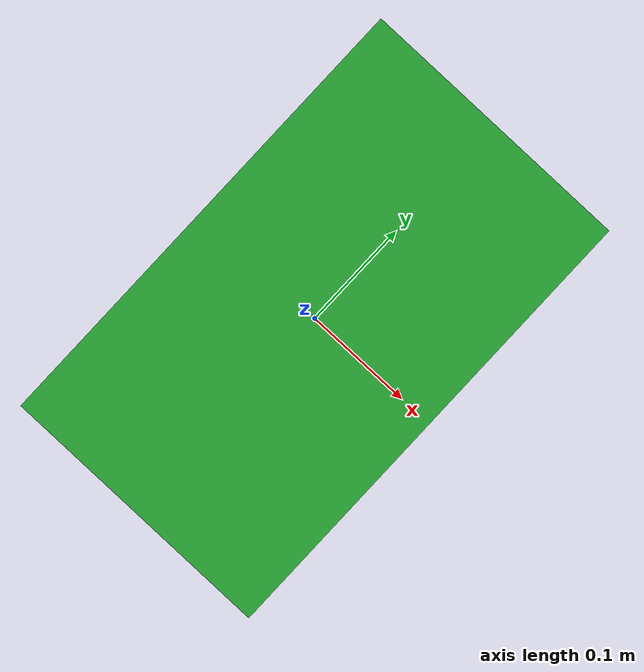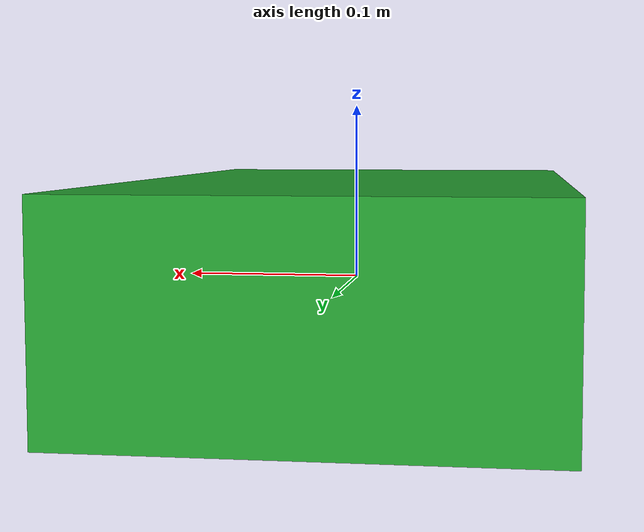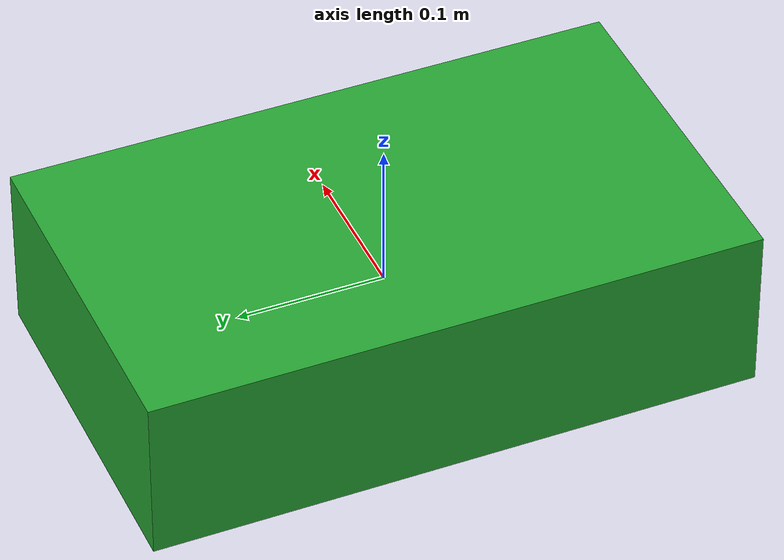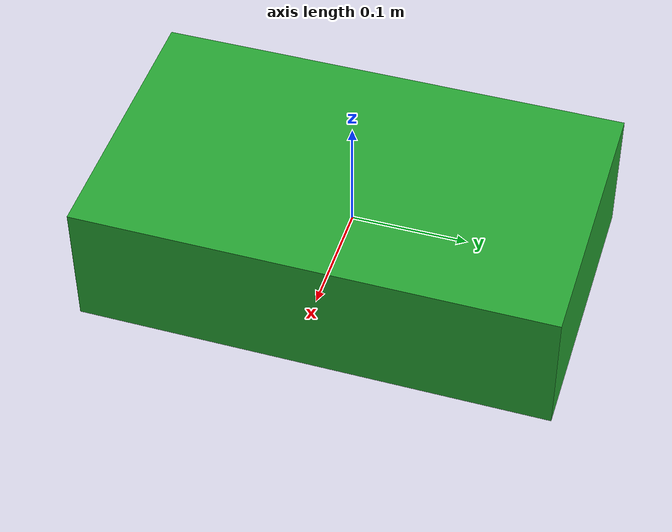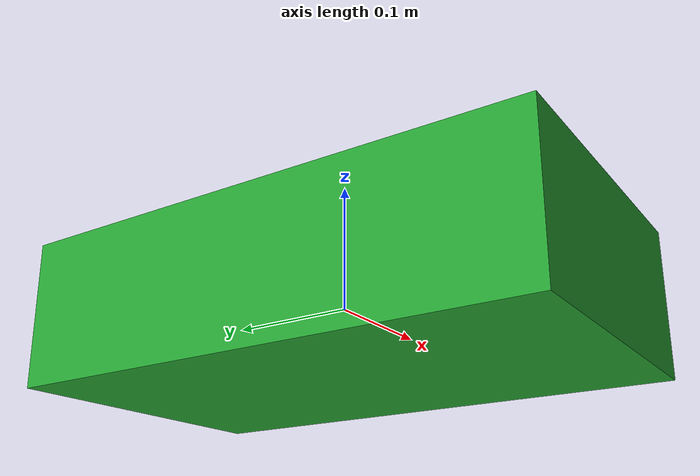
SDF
<?xml version='1.0'?>
<sdf version='1.7'>
  <model name='box_green'>
    <link name='link'>
      <inertial>
        <mass>3.5</mass>
        <inertia>
          <ixx>0.0527224</ixx>
          <ixy>0</ixy>
          <ixz>0</ixz>
          <iyy>0.0208089</iyy>
          <iyz>0</iyz>
          <izz>0.0659078</izz>
        </inertia>
        <pose>0 0 0 0 -0 0</pose>
      </inertial>
      <self_collide>0</self_collide>
      <enable_wind>0</enable_wind>
      <kinematic>0</kinematic>
      <pose>0 0 0 0 -0 0</pose>
      <gravity>1</gravity>
      <visual name='visual'>
        <geometry>
          <box>
            <size>0.241404 0.409504 0.114319</size>
          </box>
        </geometry>
        <material>
          <script>
            <name>Gazebo/Green</name>
            <uri>file://media/materials/scripts/gazebo.material</uri>
          </script>
          <shader type='pixel'>
            <normal_map>__default__</normal_map>
          </shader>
          <ambient>0.3 0.3 0.3 1</ambient>
          <diffuse>0.1 1 0.1 1</diffuse>
          <specular>0.01 0.01 0.01 1</specular>
          <emissive>0 0 0 1</emissive>
        </material>
        <pose>0 0 0 0 -0 0</pose>
        <transparency>0</transparency>
        <cast_shadows>1</cast_shadows>
      </visual>
      <collision name='collision'>
        <laser_retro>0</laser_retro>
        <max_contacts>20</max_contacts>
        <pose>0 0 0 0 -0 0</pose>
        <geometry>
          <box>
            <size>0.241404 0.409504 0.114319</size>
          </box>
        </geometry>
        <surface>
          <friction>
            <ode>
              <mu>0.6</mu>
              <mu2>0.6</mu2>
              <fdir1>0.707 0.707 0</fdir1>
              <slip1>0</slip1>
              <slip2>0</slip2>
            </ode>
            <torsional>
              <coefficient>0.6</coefficient>
              <patch_radius>0.5</patch_radius>
              <surface_radius>0.5</surface_radius>
              <use_patch_radius>0</use_patch_radius>
              <ode>
                <slip>0</slip>
              </ode>
            </torsional>
          </friction>
          <bounce>
            <restitution_coefficient>0.002</restitution_coefficient>
            <threshold>1e+06</threshold>
          </bounce>
          <contact>
            <collide_without_contact>0</collide_without_contact>
            <collide_without_contact_bitmask>1</collide_without_contact_bitmask>
            <collide_bitmask>1</collide_bitmask>
            <ode>
              <soft_cfm>0</soft_cfm>
              <soft_erp>0.2</soft_erp>
              <kp>1e+15</kp>
              <kd>1e+13</kd>
              <max_vel>0.01</max_vel>
              <min_depth>0</min_depth>
            </ode>
            <bullet>
              <split_impulse>1</split_impulse>
              <split_impulse_penetration_threshold>-0.01</split_impulse_penetration_threshold>
              <soft_cfm>0</soft_cfm>
              <soft_erp>0.2</soft_erp>
              <kp>1e+15</kp>
              <kd>1e+13</kd>
            </bullet>
          </contact>
        </surface>
      </collision>
    </link>
    <static>0</static>
    <allow_auto_disable>1</allow_auto_disable>
  </model>
</sdf>
